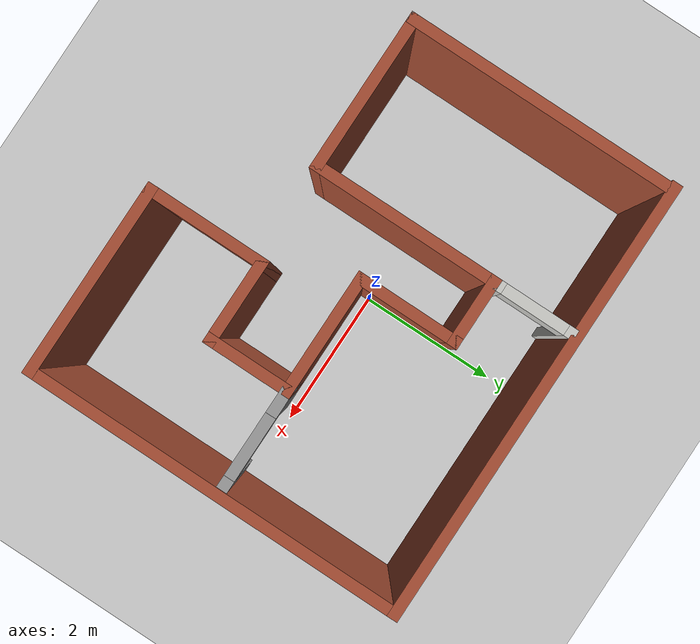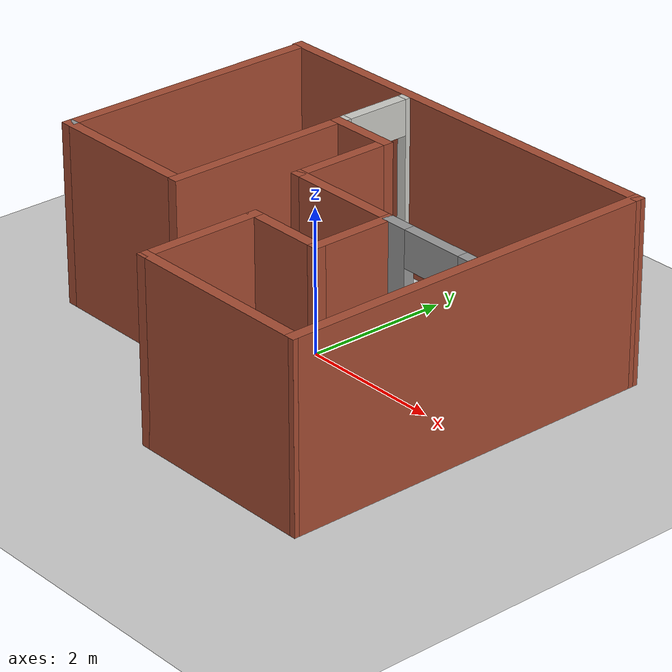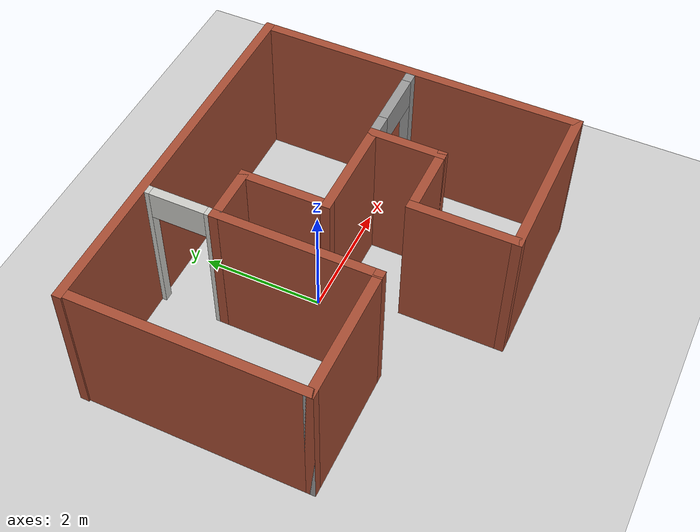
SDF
<sdf version="1.7">
 <world name="default">
  <light name="sun" type="directional">
   <pose>0 0 10 0 -0 0</pose>
   <diffuse>0.8 0.8 0.8 1</diffuse>
   <specular>0.2 0.2 0.2 1</specular>
   <attenuation>
    <range>1000</range>
    <constant>0.9</constant>
    <linear>0.01</linear>
    <quadratic>0.001</quadratic>
   </attenuation>
   <direction>-0.5 0.1 -0.9</direction>
   <spot><inner_angle>0</inner_angle><outer_angle>0</outer_angle><falloff>0</falloff></spot>
  </light>
  <model name="ground_plane">
   <static>1</static>
   <link name="link">
    <collision name="collision">
     <geometry><plane><normal>0 0 1</normal><size>100 100</size></plane></geometry>
     <surface><friction><ode><mu>100</mu><mu2>50</mu2></ode></friction></surface>
    </collision>
    <visual name="visual">
     <cast_shadows>0</cast_shadows>
     <geometry><plane><normal>0 0 1</normal><size>100 100</size></plane></geometry>
     <material>
      <script><uri>file://media/materials/scripts/gazebo.material</uri><name>Gazebo/Grey</name></script>
     </material>
    </visual>
   </link>
  </model>
  <gravity>0 0 -9.8</gravity>
  <magnetic_field>6e-06 2.3e-05 -4.2e-05</magnetic_field>
  <atmosphere type="adiabatic"/>
  <physics name="default_physics" default="0" type="ode">
   <max_step_size>0.001</max_step_size>
   <real_time_factor>1</real_time_factor>
   <real_time_update_rate>1000</real_time_update_rate>
  </physics>
  <scene><ambient>0.4 0.4 0.4 1</ambient><background>0.7 0.7 0.7 1</background><shadows>1</shadows></scene>
  <audio><device>default</device></audio>
  <spherical_coordinates>
   <surface_model>EARTH_WGS84</surface_model>
   <latitude_deg>0</latitude_deg>
   <longitude_deg>0</longitude_deg>
   <elevation>0</elevation>
   <heading_deg>0</heading_deg>
  </spherical_coordinates>
  <model name="Stanza">
   <link name="Wall_10">
    <collision name="Wall_10_Collision">
     <geometry><box><size>1.75 0.15 2.5</size></box></geometry>
     <pose>0 0 1.25 0 -0 0</pose>
    </collision>
    <visual name="Wall_10_Visual">
     <pose>0 0 1.25 0 -0 0</pose>
     <geometry><box><size>1.75 0.15 2.5</size></box></geometry>
     <material>
      <script><uri>file://media/materials/scripts/gazebo.material</uri><name>Gazebo/Bricks</name></script>
      <ambient>1 1 1 1</ambient>
     </material>
     <meta><layer>0</layer></meta>
    </visual>
    <pose>0.739754 -0.19264 0 0 -0 3.14159</pose>
   </link>
   <link name="Wall_11">
    <collision name="Wall_11_Collision">
     <geometry><box><size>1.5 0.15 2.5</size></box></geometry>
     <pose>0 0 1.25 0 -0 0</pose>
    </collision>
    <visual name="Wall_11_Visual">
     <pose>0 0 1.25 0 -0 0</pose>
     <geometry><box><size>1.5 0.15 2.5</size></box></geometry>
     <material>
      <script><uri>file://media/materials/scripts/gazebo.material</uri><name>Gazebo/Bricks</name></script>
      <ambient>1 1 1 1</ambient>
     </material>
     <meta><layer>0</layer></meta>
    </visual>
    <pose>-0.060246 0.48236 0 0 -0 1.5708</pose>
   </link>
   <link name="Wall_12">
    <collision name="Wall_12_Collision">
     <geometry><box><size>1 0.15 2.5</size></box></geometry>
     <pose>0 0 1.25 0 -0 0</pose>
    </collision>
    <visual name="Wall_12_Visual">
     <pose>0 0 1.25 0 -0 0</pose>
     <geometry><box><size>1 0.15 2.5</size></box></geometry>
     <material>
      <script><uri>file://media/materials/scripts/gazebo.material</uri><name>Gazebo/Bricks</name></script>
      <ambient>1 1 1 1</ambient>
     </material>
     <meta><layer>0</layer></meta>
    </visual>
    <pose>-0.485246 1.15736 0 0 -0 3.14159</pose>
   </link>
   <link name="Wall_13">
    <collision name="Wall_13_Collision">
     <geometry><box><size>2.68917 0.15 2.5</size></box></geometry>
     <pose>0 0 1.25 0 -0 0</pose>
    </collision>
    <visual name="Wall_13_Visual">
     <pose>0 0 1.25 0 -0 0</pose>
     <geometry><box><size>2.68917 0.15 2.5</size></box></geometry>
     <material>
      <script><uri>file://media/materials/scripts/gazebo.material</uri><name>Gazebo/Bricks</name></script>
      <ambient>1 1 1 1</ambient>
     </material>
     <meta><layer>0</layer></meta>
    </visual>
    <pose>-0.910246 -0.112222 0 0 -0 -1.5708</pose>
   </link>
   <link name="Wall_14">
    <collision name="Wall_14_Collision">
     <geometry><box><size>2.26 0.15 2.5</size></box></geometry>
     <pose>0 0 1.25 0 -0 0</pose>
    </collision>
    <visual name="Wall_14_Visual">
     <pose>0 0 1.25 0 -0 0</pose>
     <geometry><box><size>2.26 0.15 2.5</size></box></geometry>
     <material>
      <script><uri>file://media/materials/scripts/gazebo.material</uri><name>Gazebo/Bricks</name></script>
      <ambient>1 1 1 1</ambient>
     </material>
     <meta><layer>0</layer></meta>
    </visual>
    <pose>-1.96525 -1.3818 0 0 -0 3.14159</pose>
   </link>
   <link name="Wall_15">
    <collision name="Wall_15_Collision">
     <geometry><box><size>0.15 0.15 2.5</size></box></geometry>
     <pose>0 0 1.25 0 -0 0</pose>
    </collision>
    <visual name="Wall_15_Visual">
     <pose>0 0 1.25 0 -0 0</pose>
     <geometry><box><size>0.15 0.15 2.5</size></box></geometry>
     <material>
      <script><uri>file://media/materials/scripts/gazebo.material</uri><name>Gazebo/Grey</name></script>
      <ambient>1 1 1 1</ambient>
     </material>
     <meta><layer>0</layer></meta>
    </visual>
    <pose>-3.02025 -1.3818 0 0 -0 0</pose>
   </link>
   <link name="Wall_21">
    <collision name="Wall_21_Collision">
     <geometry><box><size>3.75 0.15 2.5</size></box></geometry>
     <pose>0 0 1.25 0 -0 0</pose>
    </collision>
    <visual name="Wall_21_Visual">
     <pose>0 0 1.25 0 -0 0</pose>
     <geometry><box><size>3.75 0.15 2.5</size></box></geometry>
     <material>
      <script><uri>file://media/materials/scripts/gazebo.material</uri><name>Gazebo/Bricks</name></script>
      <ambient>1 1 1 1</ambient>
     </material>
     <meta><layer>0</layer></meta>
    </visual>
    <pose>-3.02025 0.418195 0 0 -0 1.5708</pose>
   </link>
   <link name="Wall_24">
    <pose>-0.910246 1.70736 0 0 -0 1.5708</pose>
    <visual name="Wall_24_Visual_0">
     <pose>-0.515283 0 1.25 0 -0 0</pose>
     <geometry><box><size>0.219434 0.15 2.5</size></box></geometry>
     <material>
      <script><uri>file://media/materials/scripts/gazebo.material</uri><name>Gazebo/CeilingTiled</name></script>
      <ambient>1 1 1 1</ambient>
     </material>
     <meta><layer>0</layer></meta>
    </visual>
    <collision name="Wall_24_Collision_0">
     <geometry><box><size>0.219434 0.15 2.5</size></box></geometry>
     <pose>-0.515283 0 1.25 0 -0 0</pose>
    </collision>
    <visual name="Wall_24_Visual_1">
     <pose>0.559717 0 1.25 0 -0 0</pose>
     <geometry><box><size>0.130566 0.15 2.5</size></box></geometry>
     <material>
      <script><uri>file://media/materials/scripts/gazebo.material</uri><name>Gazebo/CeilingTiled</name></script>
      <ambient>1 1 1 1</ambient>
     </material>
     <meta><layer>0</layer></meta>
    </visual>
    <collision name="Wall_24_Collision_1">
     <geometry><box><size>0.130566 0.15 2.5</size></box></geometry>
     <pose>0.559717 0 1.25 0 -0 0</pose>
    </collision>
    <visual name="Wall_24_Visual_2">
     <pose>0.044434 0 2.25 0 -0 0</pose>
     <geometry><box><size>0.9 0.15 0.5</size></box></geometry>
     <material>
      <script><uri>file://media/materials/scripts/gazebo.material</uri><name>Gazebo/CeilingTiled</name></script>
      <ambient>1 1 1 1</ambient>
     </material>
     <meta><layer>0</layer></meta>
    </visual>
    <collision name="Wall_24_Collision_2">
     <geometry><box><size>0.9 0.15 0.5</size></box></geometry>
     <pose>0.044434 0 2.25 0 -0 0</pose>
    </collision>
   </link>
   <link name="Wall_26">
    <pose>2.21475 -0.19264 0 0 -0 0</pose>
    <visual name="Wall_26_Visual_0">
     <pose>-0.534617 0 1.25 0 -0 0</pose>
     <geometry><box><size>0.430766 0.15 2.5</size></box></geometry>
     <material>
      <script><uri>file://media/materials/scripts/gazebo.material</uri><name>Gazebo/Grey</name></script>
      <ambient>1 1 1 1</ambient>
     </material>
     <meta><layer>0</layer></meta>
    </visual>
    <collision name="Wall_26_Collision_0">
     <geometry><box><size>0.430766 0.15 2.5</size></box></geometry>
     <pose>-0.534617 0 1.25 0 -0 0</pose>
    </collision>
    <visual name="Wall_26_Visual_1">
     <pose>0.665383 0 1.25 0 -0 0</pose>
     <geometry><box><size>0.169234 0.15 2.5</size></box></geometry>
     <material>
      <script><uri>file://media/materials/scripts/gazebo.material</uri><name>Gazebo/Grey</name></script>
      <ambient>1 1 1 1</ambient>
     </material>
     <meta><layer>0</layer></meta>
    </visual>
    <collision name="Wall_26_Collision_1">
     <geometry><box><size>0.169234 0.15 2.5</size></box></geometry>
     <pose>0.665383 0 1.25 0 -0 0</pose>
    </collision>
    <visual name="Wall_26_Visual_2">
     <pose>0.130766 0 2.25 0 -0 0</pose>
     <geometry><box><size>0.9 0.15 0.5</size></box></geometry>
     <material>
      <script><uri>file://media/materials/scripts/gazebo.material</uri><name>Gazebo/Grey</name></script>
      <ambient>1 1 1 1</ambient>
     </material>
     <meta><layer>0</layer></meta>
    </visual>
    <collision name="Wall_26_Collision_2">
     <geometry><box><size>0.9 0.15 0.5</size></box></geometry>
     <pose>0.130766 0 2.25 0 -0 0</pose>
    </collision>
   </link>
   <link name="Wall_4">
    <collision name="Wall_4_Collision">
     <geometry><box><size>6.24 0.15 2.5</size></box></geometry>
     <pose>0 0 1.25 0 -0 0</pose>
    </collision>
    <visual name="Wall_4_Visual">
     <pose>0 0 1.25 0 -0 0</pose>
     <geometry><box><size>6.24 0.15 2.5</size></box></geometry>
     <material>
      <script><uri>file://media/materials/scripts/gazebo.material</uri><name>Gazebo/Bricks</name></script>
      <ambient>1 1 1 1</ambient>
     </material>
     <meta><layer>0</layer></meta>
    </visual>
    <pose>-3.7e-05 2.3509 0 0 -0 0</pose>
   </link>
   <link name="Wall_5">
    <collision name="Wall_5_Collision">
     <geometry><box><size>5.39356 0.15 2.5</size></box></geometry>
     <pose>0 0 1.25 0 -0 0</pose>
    </collision>
    <visual name="Wall_5_Visual">
     <pose>0 0 1.25 0 -0 0</pose>
     <geometry><box><size>5.39356 0.15 2.5</size></box></geometry>
     <material>
      <script><uri>file://media/materials/scripts/gazebo.material</uri><name>Gazebo/Bricks</name></script>
      <ambient>1 1 1 1</ambient>
     </material>
     <meta><layer>0</layer></meta>
    </visual>
    <pose>3.04236 -0.270871 0 0 -0 -1.57179</pose>
   </link>
   <link name="Wall_6">
    <collision name="Wall_6_Collision">
     <geometry><box><size>2.75 0.15 2.5</size></box></geometry>
     <pose>0 0 1.25 0 -0 0</pose>
    </collision>
    <visual name="Wall_6_Visual">
     <pose>0 0 1.25 0 -0 0</pose>
     <geometry><box><size>2.75 0.15 2.5</size></box></geometry>
     <material>
      <script><uri>file://media/materials/scripts/gazebo.material</uri><name>Gazebo/Bricks</name></script>
      <ambient>1 1 1 1</ambient>
     </material>
     <meta><layer>0</layer></meta>
    </visual>
    <pose>1.73975 -2.89264 0 0 -0 3.14159</pose>
   </link>
   <link name="Wall_7">
    <collision name="Wall_7_Collision">
     <geometry><box><size>1.75 0.15 2.5</size></box></geometry>
     <pose>0 0 1.25 0 -0 0</pose>
    </collision>
    <visual name="Wall_7_Visual">
     <pose>0 0 1.25 0 -0 0</pose>
     <geometry><box><size>1.75 0.15 2.5</size></box></geometry>
     <material>
      <script><uri>file://media/materials/scripts/gazebo.material</uri><name>Gazebo/Bricks</name></script>
      <ambient>1 1 1 1</ambient>
     </material>
     <meta><layer>0</layer></meta>
    </visual>
    <pose>0.439754 -2.09264 0 0 -0 1.5708</pose>
   </link>
   <link name="Wall_8">
    <collision name="Wall_8_Collision">
     <geometry><box><size>1.25 0.15 2.5</size></box></geometry>
     <pose>0 0 1.25 0 -0 0</pose>
    </collision>
    <visual name="Wall_8_Visual">
     <pose>0 0 1.25 0 -0 0</pose>
     <geometry><box><size>1.25 0.15 2.5</size></box></geometry>
     <material>
      <script><uri>file://media/materials/scripts/gazebo.material</uri><name>Gazebo/Bricks</name></script>
      <ambient>1 1 1 1</ambient>
     </material>
     <meta><layer>0</layer></meta>
    </visual>
    <pose>0.989754 -1.29264 0 0 -0 0</pose>
   </link>
   <link name="Wall_9">
    <collision name="Wall_9_Collision">
     <geometry><box><size>1.25 0.15 2.5</size></box></geometry>
     <pose>0 0 1.25 0 -0 0</pose>
    </collision>
    <visual name="Wall_9_Visual">
     <pose>0 0 1.25 0 -0 0</pose>
     <geometry><box><size>1.25 0.15 2.5</size></box></geometry>
     <material>
      <script><uri>file://media/materials/scripts/gazebo.material</uri><name>Gazebo/Bricks</name></script>
      <ambient>1 1 1 1</ambient>
     </material>
     <meta><layer>0</layer></meta>
    </visual>
    <pose>1.53975 -0.74264 0 0 -0 1.5708</pose>
   </link>
   <static>1</static>
  </model>
 </world>
</sdf>
